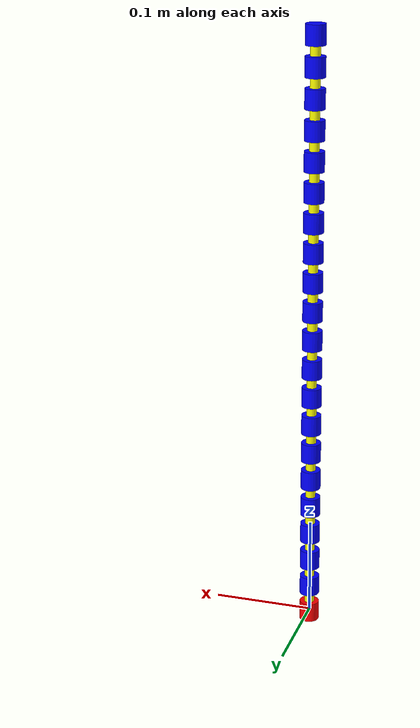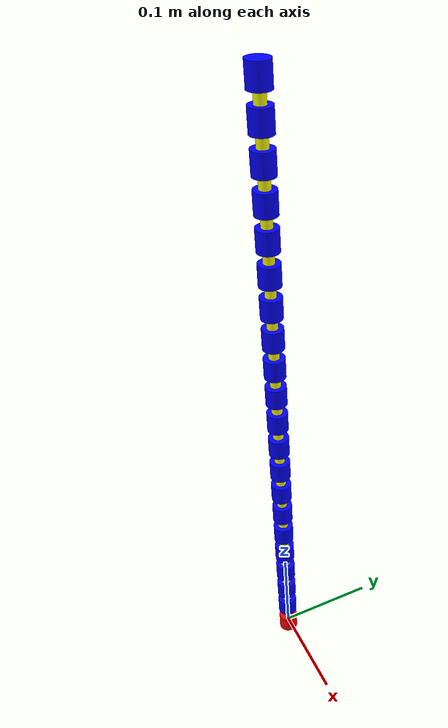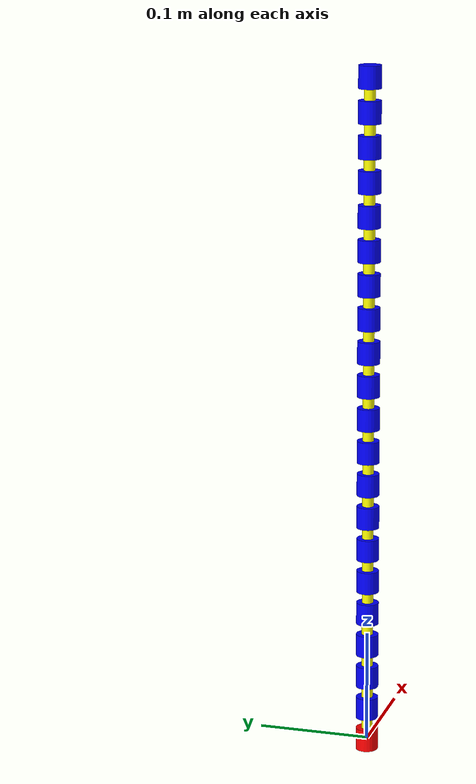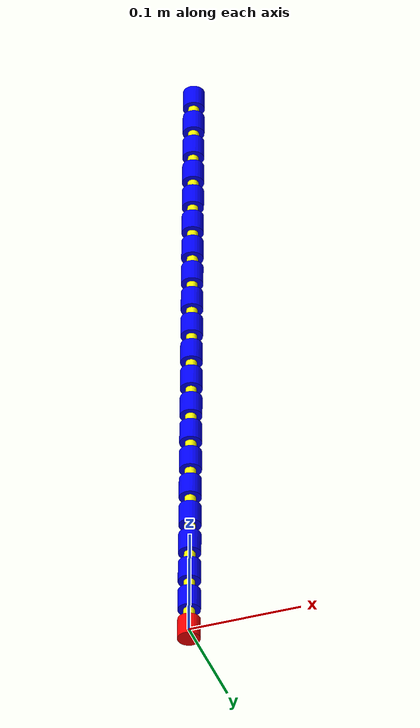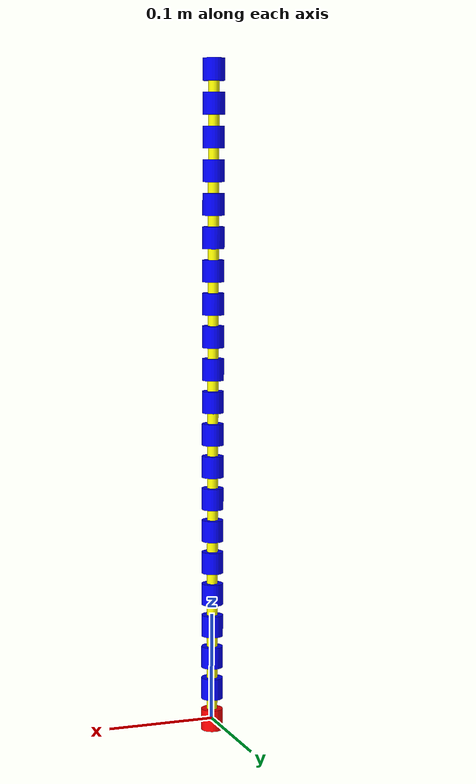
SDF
<sdf version="1.6">
  <model name='chain_neck'>

  <dynamics damping="0.0" />
  <contact>
    <restitution value="0.01"/>
    <lateral_friction value="0.5"/>
    <rolling_friction value="0.5"/>
    <contact_cfm value="0.0"/>
    <contact_erp value="1.0"/>
  </contact>

  <link name='body_link_0'>
    <self_collide>1</self_collide>
    <pose>0 0 0 0 -0 0</pose>
    <inertial>
      <pose>0 0 0 0 -0 0</pose>
      <mass>0.002</mass>
      <inertia>
        <ixx>1.1666666666666667e-07</ixx>
        <ixy>0</ixy>
        <ixz>0</ixz>
        <iyy>1.1666666666666667e-07</iyy>
        <iyz>0</iyz>
        <izz>1.0000000000000001e-07</izz>
      </inertia>
    </inertial>
    <collision name='base_link_collision_0'>
      <pose>0 0 0 0 -0 0</pose>
      <geometry>
        <cylinder>
          <length>0.02 0.02 0.02</length>
          <radius>0.01 0.01 0.01</radius>
        </cylinder>
      </geometry>
    </collision>
    <visual name='base_link_visual_0'>
      <pose>0 0 0 0 -0 0</pose>
      <geometry>
        <cylinder>
          <length>0.02 0.02 0.02</length>
          <radius>0.01 0.01 0.01</radius>
        </cylinder>
      </geometry>
      <material name="red">
        <ambient>1 0 0 1</ambient>
        <diffuse>1 0 0 1</diffuse>
        <specular>1 0 0 1</specular>
        <emissive>0 0 0 0</emissive>
      </material>
    </visual>
  </link>

  <link name='aux_body_link_1'>
    <self_collide>1</self_collide>
    <pose>0 0 0.015 0 -0 0</pose>
    <inertial>
      <pose>0 0 0 0 -0 0</pose>
      <mass>0.002</mass>
      <inertia>
        <ixx>2.9166666666666666e-08</ixx>
        <ixy>0</ixy>
        <ixz>0</ixz>
        <iyy>2.9166666666666666e-08</iyy>
        <iyz>0</iyz>
        <izz>2.5000000000000002e-08</izz>
      </inertia>
    </inertial>
    <collision name='aux_body_link_1_collision'>
      <pose>0 0 0 0 -0 0</pose>
      <geometry>
        <cylinder>
          <length>0.01 0.01 0.01</length>
          <radius>0.005 0.005 0.005</radius>
        </cylinder>
      </geometry>
    </collision>
    <visual name='aux_body_link_1_visual'>
      <pose>0 0 0 0 -0 0</pose>
      <geometry>
        <cylinder>
          <length>0.01 0.01 0.01</length>
          <radius>0.005 0.005 0.005</radius>
        </cylinder>
      </geometry>
      <material name="yellow">
        <ambient>1 1 0 1</ambient>
        <diffuse>1 1 0 1</diffuse>
        <specular>1 1 0 1</specular>
        <emissive>0 0 0 0</emissive>
      </material>
    </visual>
  </link>

  <joint name='aux_body_link_1_joint' type='revolute'>
    <pose>0 0 -0.005 0 0 0</pose>
    <child>aux_body_link_1</child>
    <parent>body_link_0</parent>
    <axis>
      <xyz>1 0 0</xyz>
      <limit>
        <lower>-3.14159</lower>
        <upper>3.14159</upper>
        <effort>20</effort>
        <velocity>2</velocity>
      </limit>
    </axis>
  </joint>

  <link name='body_link_1'>
    <self_collide>1</self_collide>
    <pose>0 0 0.03 0 -0 0</pose>
    <inertial>
      <pose>0 0 0 0 -0 0</pose>
      <mass>0.002</mass>
      <inertia>
        <ixx>1.1666666666666667e-07</ixx>
        <ixy>0</ixy>
        <ixz>0</ixz>
        <iyy>1.1666666666666667e-07</iyy>
        <iyz>0</iyz>
        <izz>1.0000000000000001e-07</izz>
      </inertia>
    </inertial>
    <collision name='body_link_1_collision'>
      <pose>0 0 0 0 -0 0</pose>
      <geometry>
        <cylinder>
          <length>0.02 0.02 0.02</length>
          <radius>0.01 0.01 0.01</radius>
        </cylinder>
      </geometry>
    </collision>
    <visual name='body_link_1_visual'>
      <pose>0 0 0 0 -0 0</pose>
      <geometry>
        <cylinder>
          <length>0.02 0.02 0.02</length>
          <radius>0.01 0.01 0.01</radius>
        </cylinder>
      </geometry>
      <material name="blue">
        <ambient>0 0 1 1</ambient>
        <diffuse>0 0 1 1</diffuse>
        <specular>0 0 1 1</specular>
        <emissive>0 0 0 0</emissive>
      </material>
    </visual>
  </link>

  <joint name='body_link_1_joint' type='revolute'>
    <pose>0 0 -0.01 0 0 0</pose>
    <child>body_link_1</child>
    <parent>aux_body_link_1</parent>
    <axis>
      <xyz>0 1 0</xyz>
      <limit>
        <lower>-3.14159</lower>
        <upper>3.14159</upper>
        <effort>20</effort>
        <velocity>2</velocity>
      </limit>
    </axis>
  </joint>

  <link name='aux_body_link_2'>
    <self_collide>1</self_collide>
    <pose>0 0 0.045 0 -0 0</pose>
    <inertial>
      <pose>0 0 0 0 -0 0</pose>
      <mass>0.002</mass>
      <inertia>
        <ixx>2.9166666666666666e-08</ixx>
        <ixy>0</ixy>
        <ixz>0</ixz>
        <iyy>2.9166666666666666e-08</iyy>
        <iyz>0</iyz>
        <izz>2.5000000000000002e-08</izz>
      </inertia>
    </inertial>
    <collision name='aux_body_link_2_collision'>
      <pose>0 0 0 0 -0 0</pose>
      <geometry>
        <cylinder>
          <length>0.01 0.01 0.01</length>
          <radius>0.005 0.005 0.005</radius>
        </cylinder>
      </geometry>
    </collision>
    <visual name='aux_body_link_2_visual'>
      <pose>0 0 0 0 -0 0</pose>
      <geometry>
        <cylinder>
          <length>0.01 0.01 0.01</length>
          <radius>0.005 0.005 0.005</radius>
        </cylinder>
      </geometry>
      <material name="yellow">
        <ambient>1 1 0 1</ambient>
        <diffuse>1 1 0 1</diffuse>
        <specular>1 1 0 1</specular>
        <emissive>0 0 0 0</emissive>
      </material>
    </visual>
  </link>

  <joint name='aux_body_link_2_joint' type='revolute'>
    <pose>0 0 -0.005 0 0 0</pose>
    <child>aux_body_link_2</child>
    <parent>body_link_1</parent>
    <axis>
      <xyz>1 0 0</xyz>
      <limit>
        <lower>-3.14159</lower>
        <upper>3.14159</upper>
        <effort>20</effort>
        <velocity>2</velocity>
      </limit>
    </axis>
  </joint>

  <link name='body_link_2'>
    <self_collide>1</self_collide>
    <pose>0 0 0.06 0 -0 0</pose>
    <inertial>
      <pose>0 0 0 0 -0 0</pose>
      <mass>0.002</mass>
      <inertia>
        <ixx>1.1666666666666667e-07</ixx>
        <ixy>0</ixy>
        <ixz>0</ixz>
        <iyy>1.1666666666666667e-07</iyy>
        <iyz>0</iyz>
        <izz>1.0000000000000001e-07</izz>
      </inertia>
    </inertial>
    <collision name='body_link_2_collision'>
      <pose>0 0 0 0 -0 0</pose>
      <geometry>
        <cylinder>
          <length>0.02 0.02 0.02</length>
          <radius>0.01 0.01 0.01</radius>
        </cylinder>
      </geometry>
    </collision>
    <visual name='body_link_2_visual'>
      <pose>0 0 0 0 -0 0</pose>
      <geometry>
        <cylinder>
          <length>0.02 0.02 0.02</length>
          <radius>0.01 0.01 0.01</radius>
        </cylinder>
      </geometry>
      <material name="blue">
        <ambient>0 0 1 1</ambient>
        <diffuse>0 0 1 1</diffuse>
        <specular>0 0 1 1</specular>
        <emissive>0 0 0 0</emissive>
      </material>
    </visual>
  </link>

  <joint name='body_link_2_joint' type='revolute'>
    <pose>0 0 -0.01 0 0 0</pose>
    <child>body_link_2</child>
    <parent>aux_body_link_2</parent>
    <axis>
      <xyz>0 1 0</xyz>
      <limit>
        <lower>-3.14159</lower>
        <upper>3.14159</upper>
        <effort>20</effort>
        <velocity>2</velocity>
      </limit>
    </axis>
  </joint>

  <link name='aux_body_link_3'>
    <self_collide>1</self_collide>
    <pose>0 0 0.075 0 -0 0</pose>
    <inertial>
      <pose>0 0 0 0 -0 0</pose>
      <mass>0.002</mass>
      <inertia>
        <ixx>2.9166666666666666e-08</ixx>
        <ixy>0</ixy>
        <ixz>0</ixz>
        <iyy>2.9166666666666666e-08</iyy>
        <iyz>0</iyz>
        <izz>2.5000000000000002e-08</izz>
      </inertia>
    </inertial>
    <collision name='aux_body_link_3_collision'>
      <pose>0 0 0 0 -0 0</pose>
      <geometry>
        <cylinder>
          <length>0.01 0.01 0.01</length>
          <radius>0.005 0.005 0.005</radius>
        </cylinder>
      </geometry>
    </collision>
    <visual name='aux_body_link_3_visual'>
      <pose>0 0 0 0 -0 0</pose>
      <geometry>
        <cylinder>
          <length>0.01 0.01 0.01</length>
          <radius>0.005 0.005 0.005</radius>
        </cylinder>
      </geometry>
      <material name="yellow">
        <ambient>1 1 0 1</ambient>
        <diffuse>1 1 0 1</diffuse>
        <specular>1 1 0 1</specular>
        <emissive>0 0 0 0</emissive>
      </material>
    </visual>
  </link>

  <joint name='aux_body_link_3_joint' type='revolute'>
    <pose>0 0 -0.005 0 0 0</pose>
    <child>aux_body_link_3</child>
    <parent>body_link_2</parent>
    <axis>
      <xyz>1 0 0</xyz>
      <limit>
        <lower>-3.14159</lower>
        <upper>3.14159</upper>
        <effort>20</effort>
        <velocity>2</velocity>
      </limit>
    </axis>
  </joint>

  <link name='body_link_3'>
    <self_collide>1</self_collide>
    <pose>0 0 0.09 0 -0 0</pose>
    <inertial>
      <pose>0 0 0 0 -0 0</pose>
      <mass>0.002</mass>
      <inertia>
        <ixx>1.1666666666666667e-07</ixx>
        <ixy>0</ixy>
        <ixz>0</ixz>
        <iyy>1.1666666666666667e-07</iyy>
        <iyz>0</iyz>
        <izz>1.0000000000000001e-07</izz>
      </inertia>
    </inertial>
    <collision name='body_link_3_collision'>
      <pose>0 0 0 0 -0 0</pose>
      <geometry>
        <cylinder>
          <length>0.02 0.02 0.02</length>
          <radius>0.01 0.01 0.01</radius>
        </cylinder>
      </geometry>
    </collision>
    <visual name='body_link_3_visual'>
      <pose>0 0 0 0 -0 0</pose>
      <geometry>
        <cylinder>
          <length>0.02 0.02 0.02</length>
          <radius>0.01 0.01 0.01</radius>
        </cylinder>
      </geometry>
      <material name="blue">
        <ambient>0 0 1 1</ambient>
        <diffuse>0 0 1 1</diffuse>
        <specular>0 0 1 1</specular>
        <emissive>0 0 0 0</emissive>
      </material>
    </visual>
  </link>

  <joint name='body_link_3_joint' type='revolute'>
    <pose>0 0 -0.01 0 0 0</pose>
    <child>body_link_3</child>
    <parent>aux_body_link_3</parent>
    <axis>
      <xyz>0 1 0</xyz>
      <limit>
        <lower>-3.14159</lower>
        <upper>3.14159</upper>
        <effort>20</effort>
        <velocity>2</velocity>
      </limit>
    </axis>
  </joint>

  <link name='aux_body_link_4'>
    <self_collide>1</self_collide>
    <pose>0 0 0.105 0 -0 0</pose>
    <inertial>
      <pose>0 0 0 0 -0 0</pose>
      <mass>0.002</mass>
      <inertia>
        <ixx>2.9166666666666666e-08</ixx>
        <ixy>0</ixy>
        <ixz>0</ixz>
        <iyy>2.9166666666666666e-08</iyy>
        <iyz>0</iyz>
        <izz>2.5000000000000002e-08</izz>
      </inertia>
    </inertial>
    <collision name='aux_body_link_4_collision'>
      <pose>0 0 0 0 -0 0</pose>
      <geometry>
        <cylinder>
          <length>0.01 0.01 0.01</length>
          <radius>0.005 0.005 0.005</radius>
        </cylinder>
      </geometry>
    </collision>
    <visual name='aux_body_link_4_visual'>
      <pose>0 0 0 0 -0 0</pose>
      <geometry>
        <cylinder>
          <length>0.01 0.01 0.01</length>
          <radius>0.005 0.005 0.005</radius>
        </cylinder>
      </geometry>
      <material name="yellow">
        <ambient>1 1 0 1</ambient>
        <diffuse>1 1 0 1</diffuse>
        <specular>1 1 0 1</specular>
        <emissive>0 0 0 0</emissive>
      </material>
    </visual>
  </link>

  <joint name='aux_body_link_4_joint' type='revolute'>
    <pose>0 0 -0.005 0 0 0</pose>
    <child>aux_body_link_4</child>
    <parent>body_link_3</parent>
    <axis>
      <xyz>1 0 0</xyz>
      <limit>
        <lower>-3.14159</lower>
        <upper>3.14159</upper>
        <effort>20</effort>
        <velocity>2</velocity>
      </limit>
    </axis>
  </joint>

  <link name='body_link_4'>
    <self_collide>1</self_collide>
    <pose>0 0 0.12 0 -0 0</pose>
    <inertial>
      <pose>0 0 0 0 -0 0</pose>
      <mass>0.002</mass>
      <inertia>
        <ixx>1.1666666666666667e-07</ixx>
        <ixy>0</ixy>
        <ixz>0</ixz>
        <iyy>1.1666666666666667e-07</iyy>
        <iyz>0</iyz>
        <izz>1.0000000000000001e-07</izz>
      </inertia>
    </inertial>
    <collision name='body_link_4_collision'>
      <pose>0 0 0 0 -0 0</pose>
      <geometry>
        <cylinder>
          <length>0.02 0.02 0.02</length>
          <radius>0.01 0.01 0.01</radius>
        </cylinder>
      </geometry>
    </collision>
    <visual name='body_link_4_visual'>
      <pose>0 0 0 0 -0 0</pose>
      <geometry>
        <cylinder>
          <length>0.02 0.02 0.02</length>
          <radius>0.01 0.01 0.01</radius>
        </cylinder>
      </geometry>
      <material name="blue">
        <ambient>0 0 1 1</ambient>
        <diffuse>0 0 1 1</diffuse>
        <specular>0 0 1 1</specular>
        <emissive>0 0 0 0</emissive>
      </material>
    </visual>
  </link>

  <joint name='body_link_4_joint' type='revolute'>
    <pose>0 0 -0.01 0 0 0</pose>
    <child>body_link_4</child>
    <parent>aux_body_link_4</parent>
    <axis>
      <xyz>0 1 0</xyz>
      <limit>
        <lower>-3.14159</lower>
        <upper>3.14159</upper>
        <effort>20</effort>
        <velocity>2</velocity>
      </limit>
    </axis>
  </joint>

  <link name='aux_body_link_5'>
    <self_collide>1</self_collide>
    <pose>0 0 0.135 0 -0 0</pose>
    <inertial>
      <pose>0 0 0 0 -0 0</pose>
      <mass>0.002</mass>
      <inertia>
        <ixx>2.9166666666666666e-08</ixx>
        <ixy>0</ixy>
        <ixz>0</ixz>
        <iyy>2.9166666666666666e-08</iyy>
        <iyz>0</iyz>
        <izz>2.5000000000000002e-08</izz>
      </inertia>
    </inertial>
    <collision name='aux_body_link_5_collision'>
      <pose>0 0 0 0 -0 0</pose>
      <geometry>
        <cylinder>
          <length>0.01 0.01 0.01</length>
          <radius>0.005 0.005 0.005</radius>
        </cylinder>
      </geometry>
    </collision>
    <visual name='aux_body_link_5_visual'>
      <pose>0 0 0 0 -0 0</pose>
      <geometry>
        <cylinder>
          <length>0.01 0.01 0.01</length>
          <radius>0.005 0.005 0.005</radius>
        </cylinder>
      </geometry>
      <material name="yellow">
        <ambient>1 1 0 1</ambient>
        <diffuse>1 1 0 1</diffuse>
        <specular>1 1 0 1</specular>
        <emissive>0 0 0 0</emissive>
      </material>
    </visual>
  </link>

  <joint name='aux_body_link_5_joint' type='revolute'>
    <pose>0 0 -0.005 0 0 0</pose>
    <child>aux_body_link_5</child>
    <parent>body_link_4</parent>
    <axis>
      <xyz>1 0 0</xyz>
      <limit>
        <lower>-3.14159</lower>
        <upper>3.14159</upper>
        <effort>20</effort>
        <velocity>2</velocity>
      </limit>
    </axis>
  </joint>

  <link name='body_link_5'>
    <self_collide>1</self_collide>
    <pose>0 0 0.15 0 -0 0</pose>
    <inertial>
      <pose>0 0 0 0 -0 0</pose>
      <mass>0.002</mass>
      <inertia>
        <ixx>1.1666666666666667e-07</ixx>
        <ixy>0</ixy>
        <ixz>0</ixz>
        <iyy>1.1666666666666667e-07</iyy>
        <iyz>0</iyz>
        <izz>1.0000000000000001e-07</izz>
      </inertia>
    </inertial>
    <collision name='body_link_5_collision'>
      <pose>0 0 0 0 -0 0</pose>
      <geometry>
        <cylinder>
          <length>0.02 0.02 0.02</length>
          <radius>0.01 0.01 0.01</radius>
        </cylinder>
      </geometry>
    </collision>
    <visual name='body_link_5_visual'>
      <pose>0 0 0 0 -0 0</pose>
      <geometry>
        <cylinder>
          <length>0.02 0.02 0.02</length>
          <radius>0.01 0.01 0.01</radius>
        </cylinder>
      </geometry>
      <material name="blue">
        <ambient>0 0 1 1</ambient>
        <diffuse>0 0 1 1</diffuse>
        <specular>0 0 1 1</specular>
        <emissive>0 0 0 0</emissive>
      </material>
    </visual>
  </link>

  <joint name='body_link_5_joint' type='revolute'>
    <pose>0 0 -0.01 0 0 0</pose>
    <child>body_link_5</child>
    <parent>aux_body_link_5</parent>
    <axis>
      <xyz>0 1 0</xyz>
      <limit>
        <lower>-3.14159</lower>
        <upper>3.14159</upper>
        <effort>20</effort>
        <velocity>2</velocity>
      </limit>
    </axis>
  </joint>

  <link name='aux_body_link_6'>
    <self_collide>1</self_collide>
    <pose>0 0 0.16499999999999998 0 -0 0</pose>
    <inertial>
      <pose>0 0 0 0 -0 0</pose>
      <mass>0.002</mass>
      <inertia>
        <ixx>2.9166666666666666e-08</ixx>
        <ixy>0</ixy>
        <ixz>0</ixz>
        <iyy>2.9166666666666666e-08</iyy>
        <iyz>0</iyz>
        <izz>2.5000000000000002e-08</izz>
      </inertia>
    </inertial>
    <collision name='aux_body_link_6_collision'>
      <pose>0 0 0 0 -0 0</pose>
      <geometry>
        <cylinder>
          <length>0.01 0.01 0.01</length>
          <radius>0.005 0.005 0.005</radius>
        </cylinder>
      </geometry>
    </collision>
    <visual name='aux_body_link_6_visual'>
      <pose>0 0 0 0 -0 0</pose>
      <geometry>
        <cylinder>
          <length>0.01 0.01 0.01</length>
          <radius>0.005 0.005 0.005</radius>
        </cylinder>
      </geometry>
      <material name="yellow">
        <ambient>1 1 0 1</ambient>
        <diffuse>1 1 0 1</diffuse>
        <specular>1 1 0 1</specular>
        <emissive>0 0 0 0</emissive>
      </material>
    </visual>
  </link>

  <joint name='aux_body_link_6_joint' type='revolute'>
    <pose>0 0 -0.005 0 0 0</pose>
    <child>aux_body_link_6</child>
    <parent>body_link_5</parent>
    <axis>
      <xyz>1 0 0</xyz>
      <limit>
        <lower>-3.14159</lower>
        <upper>3.14159</upper>
        <effort>20</effort>
        <velocity>2</velocity>
      </limit>
    </axis>
  </joint>

  <link name='body_link_6'>
    <self_collide>1</self_collide>
    <pose>0 0 0.18 0 -0 0</pose>
    <inertial>
      <pose>0 0 0 0 -0 0</pose>
      <mass>0.002</mass>
      <inertia>
        <ixx>1.1666666666666667e-07</ixx>
        <ixy>0</ixy>
        <ixz>0</ixz>
        <iyy>1.1666666666666667e-07</iyy>
        <iyz>0</iyz>
        <izz>1.0000000000000001e-07</izz>
      </inertia>
    </inertial>
    <collision name='body_link_6_collision'>
      <pose>0 0 0 0 -0 0</pose>
      <geometry>
        <cylinder>
          <length>0.02 0.02 0.02</length>
          <radius>0.01 0.01 0.01</radius>
        </cylinder>
      </geometry>
    </collision>
    <visual name='body_link_6_visual'>
      <pose>0 0 0 0 -0 0</pose>
      <geometry>
        <cylinder>
          <length>0.02 0.02 0.02</length>
          <radius>0.01 0.01 0.01</radius>
        </cylinder>
      </geometry>
      <material name="blue">
        <ambient>0 0 1 1</ambient>
        <diffuse>0 0 1 1</diffuse>
        <specular>0 0 1 1</specular>
        <emissive>0 0 0 0</emissive>
      </material>
    </visual>
  </link>

  <joint name='body_link_6_joint' type='revolute'>
    <pose>0 0 -0.01 0 0 0</pose>
    <child>body_link_6</child>
    <parent>aux_body_link_6</parent>
    <axis>
      <xyz>0 1 0</xyz>
      <limit>
        <lower>-3.14159</lower>
        <upper>3.14159</upper>
        <effort>20</effort>
        <velocity>2</velocity>
      </limit>
    </axis>
  </joint>

  <link name='aux_body_link_7'>
    <self_collide>1</self_collide>
    <pose>0 0 0.195 0 -0 0</pose>
    <inertial>
      <pose>0 0 0 0 -0 0</pose>
      <mass>0.002</mass>
      <inertia>
        <ixx>2.9166666666666666e-08</ixx>
        <ixy>0</ixy>
        <ixz>0</ixz>
        <iyy>2.9166666666666666e-08</iyy>
        <iyz>0</iyz>
        <izz>2.5000000000000002e-08</izz>
      </inertia>
    </inertial>
    <collision name='aux_body_link_7_collision'>
      <pose>0 0 0 0 -0 0</pose>
      <geometry>
        <cylinder>
          <length>0.01 0.01 0.01</length>
          <radius>0.005 0.005 0.005</radius>
        </cylinder>
      </geometry>
    </collision>
    <visual name='aux_body_link_7_visual'>
      <pose>0 0 0 0 -0 0</pose>
      <geometry>
        <cylinder>
          <length>0.01 0.01 0.01</length>
          <radius>0.005 0.005 0.005</radius>
        </cylinder>
      </geometry>
      <material name="yellow">
        <ambient>1 1 0 1</ambient>
        <diffuse>1 1 0 1</diffuse>
        <specular>1 1 0 1</specular>
        <emissive>0 0 0 0</emissive>
      </material>
    </visual>
  </link>

  <joint name='aux_body_link_7_joint' type='revolute'>
    <pose>0 0 -0.005 0 0 0</pose>
    <child>aux_body_link_7</child>
    <parent>body_link_6</parent>
    <axis>
      <xyz>1 0 0</xyz>
      <limit>
        <lower>-3.14159</lower>
        <upper>3.14159</upper>
        <effort>20</effort>
        <velocity>2</velocity>
      </limit>
    </axis>
  </joint>

  <link name='body_link_7'>
    <self_collide>1</self_collide>
    <pose>0 0 0.21 0 -0 0</pose>
    <inertial>
      <pose>0 0 0 0 -0 0</pose>
      <mass>0.002</mass>
      <inertia>
        <ixx>1.1666666666666667e-07</ixx>
        <ixy>0</ixy>
        <ixz>0</ixz>
        <iyy>1.1666666666666667e-07</iyy>
        <iyz>0</iyz>
        <izz>1.0000000000000001e-07</izz>
      </inertia>
    </inertial>
    <collision name='body_link_7_collision'>
      <pose>0 0 0 0 -0 0</pose>
      <geometry>
        <cylinder>
          <length>0.02 0.02 0.02</length>
          <radius>0.01 0.01 0.01</radius>
        </cylinder>
      </geometry>
    </collision>
    <visual name='body_link_7_visual'>
      <pose>0 0 0 0 -0 0</pose>
      <geometry>
        <cylinder>
          <length>0.02 0.02 0.02</length>
          <radius>0.01 0.01 0.01</radius>
        </cylinder>
      </geometry>
      <material name="blue">
        <ambient>0 0 1 1</ambient>
        <diffuse>0 0 1 1</diffuse>
        <specular>0 0 1 1</specular>
        <emissive>0 0 0 0</emissive>
      </material>
    </visual>
  </link>

  <joint name='body_link_7_joint' type='revolute'>
    <pose>0 0 -0.01 0 0 0</pose>
    <child>body_link_7</child>
    <parent>aux_body_link_7</parent>
    <axis>
      <xyz>0 1 0</xyz>
      <limit>
        <lower>-3.14159</lower>
        <upper>3.14159</upper>
        <effort>20</effort>
        <velocity>2</velocity>
      </limit>
    </axis>
  </joint>

  <link name='aux_body_link_8'>
    <self_collide>1</self_collide>
    <pose>0 0 0.22499999999999998 0 -0 0</pose>
    <inertial>
      <pose>0 0 0 0 -0 0</pose>
      <mass>0.002</mass>
      <inertia>
        <ixx>2.9166666666666666e-08</ixx>
        <ixy>0</ixy>
        <ixz>0</ixz>
        <iyy>2.9166666666666666e-08</iyy>
        <iyz>0</iyz>
        <izz>2.5000000000000002e-08</izz>
      </inertia>
    </inertial>
    <collision name='aux_body_link_8_collision'>
      <pose>0 0 0 0 -0 0</pose>
      <geometry>
        <cylinder>
          <length>0.01 0.01 0.01</length>
          <radius>0.005 0.005 0.005</radius>
        </cylinder>
      </geometry>
    </collision>
    <visual name='aux_body_link_8_visual'>
      <pose>0 0 0 0 -0 0</pose>
      <geometry>
        <cylinder>
          <length>0.01 0.01 0.01</length>
          <radius>0.005 0.005 0.005</radius>
        </cylinder>
      </geometry>
      <material name="yellow">
        <ambient>1 1 0 1</ambient>
        <diffuse>1 1 0 1</diffuse>
        <specular>1 1 0 1</specular>
        <emissive>0 0 0 0</emissive>
      </material>
    </visual>
  </link>

  <joint name='aux_body_link_8_joint' type='revolute'>
    <pose>0 0 -0.005 0 0 0</pose>
    <child>aux_body_link_8</child>
    <parent>body_link_7</parent>
    <axis>
      <xyz>1 0 0</xyz>
      <limit>
        <lower>-3.14159</lower>
        <upper>3.14159</upper>
        <effort>20</effort>
        <velocity>2</velocity>
      </limit>
    </axis>
  </joint>

  <link name='body_link_8'>
    <self_collide>1</self_collide>
    <pose>0 0 0.24 0 -0 0</pose>
    <inertial>
      <pose>0 0 0 0 -0 0</pose>
      <mass>0.002</mass>
      <inertia>
        <ixx>1.1666666666666667e-07</ixx>
        <ixy>0</ixy>
        <ixz>0</ixz>
        <iyy>1.1666666666666667e-07</iyy>
        <iyz>0</iyz>
        <izz>1.0000000000000001e-07</izz>
      </inertia>
    </inertial>
    <collision name='body_link_8_collision'>
      <pose>0 0 0 0 -0 0</pose>
      <geometry>
        <cylinder>
          <length>0.02 0.02 0.02</length>
          <radius>0.01 0.01 0.01</radius>
        </cylinder>
      </geometry>
    </collision>
    <visual name='body_link_8_visual'>
      <pose>0 0 0 0 -0 0</pose>
      <geometry>
        <cylinder>
          <length>0.02 0.02 0.02</length>
          <radius>0.01 0.01 0.01</radius>
        </cylinder>
      </geometry>
      <material name="blue">
        <ambient>0 0 1 1</ambient>
        <diffuse>0 0 1 1</diffuse>
        <specular>0 0 1 1</specular>
        <emissive>0 0 0 0</emissive>
      </material>
    </visual>
  </link>

  <joint name='body_link_8_joint' type='revolute'>
    <pose>0 0 -0.01 0 0 0</pose>
    <child>body_link_8</child>
    <parent>aux_body_link_8</parent>
    <axis>
      <xyz>0 1 0</xyz>
      <limit>
        <lower>-3.14159</lower>
        <upper>3.14159</upper>
        <effort>20</effort>
        <velocity>2</velocity>
      </limit>
    </axis>
  </joint>

  <link name='aux_body_link_9'>
    <self_collide>1</self_collide>
    <pose>0 0 0.255 0 -0 0</pose>
    <inertial>
      <pose>0 0 0 0 -0 0</pose>
      <mass>0.002</mass>
      <inertia>
        <ixx>2.9166666666666666e-08</ixx>
        <ixy>0</ixy>
        <ixz>0</ixz>
        <iyy>2.9166666666666666e-08</iyy>
        <iyz>0</iyz>
        <izz>2.5000000000000002e-08</izz>
      </inertia>
    </inertial>
    <collision name='aux_body_link_9_collision'>
      <pose>0 0 0 0 -0 0</pose>
      <geometry>
        <cylinder>
          <length>0.01 0.01 0.01</length>
          <radius>0.005 0.005 0.005</radius>
        </cylinder>
      </geometry>
    </collision>
    <visual name='aux_body_link_9_visual'>
      <pose>0 0 0 0 -0 0</pose>
      <geometry>
        <cylinder>
          <length>0.01 0.01 0.01</length>
          <radius>0.005 0.005 0.005</radius>
        </cylinder>
      </geometry>
      <material name="yellow">
        <ambient>1 1 0 1</ambient>
        <diffuse>1 1 0 1</diffuse>
        <specular>1 1 0 1</specular>
        <emissive>0 0 0 0</emissive>
      </material>
    </visual>
  </link>

  <joint name='aux_body_link_9_joint' type='revolute'>
    <pose>0 0 -0.005 0 0 0</pose>
    <child>aux_body_link_9</child>
    <parent>body_link_8</parent>
    <axis>
      <xyz>1 0 0</xyz>
      <limit>
        <lower>-3.14159</lower>
        <upper>3.14159</upper>
        <effort>20</effort>
        <velocity>2</velocity>
      </limit>
    </axis>
  </joint>

  <link name='body_link_9'>
    <self_collide>1</self_collide>
    <pose>0 0 0.27 0 -0 0</pose>
    <inertial>
      <pose>0 0 0 0 -0 0</pose>
      <mass>0.002</mass>
      <inertia>
        <ixx>1.1666666666666667e-07</ixx>
        <ixy>0</ixy>
        <ixz>0</ixz>
        <iyy>1.1666666666666667e-07</iyy>
        <iyz>0</iyz>
        <izz>1.0000000000000001e-07</izz>
      </inertia>
    </inertial>
    <collision name='body_link_9_collision'>
      <pose>0 0 0 0 -0 0</pose>
      <geometry>
        <cylinder>
          <length>0.02 0.02 0.02</length>
          <radius>0.01 0.01 0.01</radius>
        </cylinder>
      </geometry>
    </collision>
    <visual name='body_link_9_visual'>
      <pose>0 0 0 0 -0 0</pose>
      <geometry>
        <cylinder>
          <length>0.02 0.02 0.02</length>
          <radius>0.01 0.01 0.01</radius>
        </cylinder>
      </geometry>
      <material name="blue">
        <ambient>0 0 1 1</ambient>
        <diffuse>0 0 1 1</diffuse>
        <specular>0 0 1 1</specular>
        <emissive>0 0 0 0</emissive>
      </material>
    </visual>
  </link>

  <joint name='body_link_9_joint' type='revolute'>
    <pose>0 0 -0.01 0 0 0</pose>
    <child>body_link_9</child>
    <parent>aux_body_link_9</parent>
    <axis>
      <xyz>0 1 0</xyz>
      <limit>
        <lower>-3.14159</lower>
        <upper>3.14159</upper>
        <effort>20</effort>
        <velocity>2</velocity>
      </limit>
    </axis>
  </joint>

  <link name='aux_body_link_10'>
    <self_collide>1</self_collide>
    <pose>0 0 0.285 0 -0 0</pose>
    <inertial>
      <pose>0 0 0 0 -0 0</pose>
      <mass>0.002</mass>
      <inertia>
        <ixx>2.9166666666666666e-08</ixx>
        <ixy>0</ixy>
        <ixz>0</ixz>
        <iyy>2.9166666666666666e-08</iyy>
        <iyz>0</iyz>
        <izz>2.5000000000000002e-08</izz>
      </inertia>
    </inertial>
    <collision name='aux_body_link_10_collision'>
      <pose>0 0 0 0 -0 0</pose>
      <geometry>
        <cylinder>
          <length>0.01 0.01 0.01</length>
          <radius>0.005 0.005 0.005</radius>
        </cylinder>
      </geometry>
    </collision>
    <visual name='aux_body_link_10_visual'>
      <pose>0 0 0 0 -0 0</pose>
      <geometry>
        <cylinder>
          <length>0.01 0.01 0.01</length>
          <radius>0.005 0.005 0.005</radius>
        </cylinder>
      </geometry>
      <material name="yellow">
        <ambient>1 1 0 1</ambient>
        <diffuse>1 1 0 1</diffuse>
        <specular>1 1 0 1</specular>
        <emissive>0 0 0 0</emissive>
      </material>
    </visual>
  </link>

  <joint name='aux_body_link_10_joint' type='revolute'>
    <pose>0 0 -0.005 0 0 0</pose>
    <child>aux_body_link_10</child>
    <parent>body_link_9</parent>
    <axis>
      <xyz>1 0 0</xyz>
      <limit>
        <lower>-3.14159</lower>
        <upper>3.14159</upper>
        <effort>20</effort>
        <velocity>2</velocity>
      </limit>
    </axis>
  </joint>

  <link name='body_link_10'>
    <self_collide>1</self_collide>
    <pose>0 0 0.3 0 -0 0</pose>
    <inertial>
      <pose>0 0 0 0 -0 0</pose>
      <mass>0.002</mass>
      <inertia>
        <ixx>1.1666666666666667e-07</ixx>
        <ixy>0</ixy>
        <ixz>0</ixz>
        <iyy>1.1666666666666667e-07</iyy>
        <iyz>0</iyz>
        <izz>1.0000000000000001e-07</izz>
      </inertia>
    </inertial>
    <collision name='body_link_10_collision'>
      <pose>0 0 0 0 -0 0</pose>
      <geometry>
        <cylinder>
          <length>0.02 0.02 0.02</length>
          <radius>0.01 0.01 0.01</radius>
        </cylinder>
      </geometry>
    </collision>
    <visual name='body_link_10_visual'>
      <pose>0 0 0 0 -0 0</pose>
      <geometry>
        <cylinder>
          <length>0.02 0.02 0.02</length>
          <radius>0.01 0.01 0.01</radius>
        </cylinder>
      </geometry>
      <material name="blue">
        <ambient>0 0 1 1</ambient>
        <diffuse>0 0 1 1</diffuse>
        <specular>0 0 1 1</specular>
        <emissive>0 0 0 0</emissive>
      </material>
    </visual>
  </link>

  <joint name='body_link_10_joint' type='revolute'>
    <pose>0 0 -0.01 0 0 0</pose>
    <child>body_link_10</child>
    <parent>aux_body_link_10</parent>
    <axis>
      <xyz>0 1 0</xyz>
      <limit>
        <lower>-3.14159</lower>
        <upper>3.14159</upper>
        <effort>20</effort>
        <velocity>2</velocity>
      </limit>
    </axis>
  </joint>

  <link name='aux_body_link_11'>
    <self_collide>1</self_collide>
    <pose>0 0 0.315 0 -0 0</pose>
    <inertial>
      <pose>0 0 0 0 -0 0</pose>
      <mass>0.002</mass>
      <inertia>
        <ixx>2.9166666666666666e-08</ixx>
        <ixy>0</ixy>
        <ixz>0</ixz>
        <iyy>2.9166666666666666e-08</iyy>
        <iyz>0</iyz>
        <izz>2.5000000000000002e-08</izz>
      </inertia>
    </inertial>
    <collision name='aux_body_link_11_collision'>
      <pose>0 0 0 0 -0 0</pose>
      <geometry>
        <cylinder>
          <length>0.01 0.01 0.01</length>
          <radius>0.005 0.005 0.005</radius>
        </cylinder>
      </geometry>
    </collision>
    <visual name='aux_body_link_11_visual'>
      <pose>0 0 0 0 -0 0</pose>
      <geometry>
        <cylinder>
          <length>0.01 0.01 0.01</length>
          <radius>0.005 0.005 0.005</radius>
        </cylinder>
      </geometry>
      <material name="yellow">
        <ambient>1 1 0 1</ambient>
        <diffuse>1 1 0 1</diffuse>
        <specular>1 1 0 1</specular>
        <emissive>0 0 0 0</emissive>
      </material>
    </visual>
  </link>

  <joint name='aux_body_link_11_joint' type='revolute'>
    <pose>0 0 -0.005 0 0 0</pose>
    <child>aux_body_link_11</child>
    <parent>body_link_10</parent>
    <axis>
      <xyz>1 0 0</xyz>
      <limit>
        <lower>-3.14159</lower>
        <upper>3.14159</upper>
        <effort>20</effort>
        <velocity>2</velocity>
      </limit>
    </axis>
  </joint>

  <link name='body_link_11'>
    <self_collide>1</self_collide>
    <pose>0 0 0.32999999999999996 0 -0 0</pose>
    <inertial>
      <pose>0 0 0 0 -0 0</pose>
      <mass>0.002</mass>
      <inertia>
        <ixx>1.1666666666666667e-07</ixx>
        <ixy>0</ixy>
        <ixz>0</ixz>
        <iyy>1.1666666666666667e-07</iyy>
        <iyz>0</iyz>
        <izz>1.0000000000000001e-07</izz>
      </inertia>
    </inertial>
    <collision name='body_link_11_collision'>
      <pose>0 0 0 0 -0 0</pose>
      <geometry>
        <cylinder>
          <length>0.02 0.02 0.02</length>
          <radius>0.01 0.01 0.01</radius>
        </cylinder>
      </geometry>
    </collision>
    <visual name='body_link_11_visual'>
      <pose>0 0 0 0 -0 0</pose>
      <geometry>
        <cylinder>
          <length>0.02 0.02 0.02</length>
          <radius>0.01 0.01 0.01</radius>
        </cylinder>
      </geometry>
      <material name="blue">
        <ambient>0 0 1 1</ambient>
        <diffuse>0 0 1 1</diffuse>
        <specular>0 0 1 1</specular>
        <emissive>0 0 0 0</emissive>
      </material>
    </visual>
  </link>

  <joint name='body_link_11_joint' type='revolute'>
    <pose>0 0 -0.01 0 0 0</pose>
    <child>body_link_11</child>
    <parent>aux_body_link_11</parent>
    <axis>
      <xyz>0 1 0</xyz>
      <limit>
        <lower>-3.14159</lower>
        <upper>3.14159</upper>
        <effort>20</effort>
        <velocity>2</velocity>
      </limit>
    </axis>
  </joint>

  <link name='aux_body_link_12'>
    <self_collide>1</self_collide>
    <pose>0 0 0.345 0 -0 0</pose>
    <inertial>
      <pose>0 0 0 0 -0 0</pose>
      <mass>0.002</mass>
      <inertia>
        <ixx>2.9166666666666666e-08</ixx>
        <ixy>0</ixy>
        <ixz>0</ixz>
        <iyy>2.9166666666666666e-08</iyy>
        <iyz>0</iyz>
        <izz>2.5000000000000002e-08</izz>
      </inertia>
    </inertial>
    <collision name='aux_body_link_12_collision'>
      <pose>0 0 0 0 -0 0</pose>
      <geometry>
        <cylinder>
          <length>0.01 0.01 0.01</length>
          <radius>0.005 0.005 0.005</radius>
        </cylinder>
      </geometry>
    </collision>
    <visual name='aux_body_link_12_visual'>
      <pose>0 0 0 0 -0 0</pose>
      <geometry>
        <cylinder>
          <length>0.01 0.01 0.01</length>
          <radius>0.005 0.005 0.005</radius>
        </cylinder>
      </geometry>
      <material name="yellow">
        <ambient>1 1 0 1</ambient>
        <diffuse>1 1 0 1</diffuse>
        <specular>1 1 0 1</specular>
        <emissive>0 0 0 0</emissive>
      </material>
    </visual>
  </link>

  <joint name='aux_body_link_12_joint' type='revolute'>
    <pose>0 0 -0.005 0 0 0</pose>
    <child>aux_body_link_12</child>
    <parent>body_link_11</parent>
    <axis>
      <xyz>1 0 0</xyz>
      <limit>
        <lower>-3.14159</lower>
        <upper>3.14159</upper>
        <effort>20</effort>
        <velocity>2</velocity>
      </limit>
    </axis>
  </joint>

  <link name='body_link_12'>
    <self_collide>1</self_collide>
    <pose>0 0 0.36 0 -0 0</pose>
    <inertial>
      <pose>0 0 0 0 -0 0</pose>
      <mass>0.002</mass>
      <inertia>
        <ixx>1.1666666666666667e-07</ixx>
        <ixy>0</ixy>
        <ixz>0</ixz>
        <iyy>1.1666666666666667e-07</iyy>
        <iyz>0</iyz>
        <izz>1.0000000000000001e-07</izz>
      </inertia>
    </inertial>
    <collision name='body_link_12_collision'>
      <pose>0 0 0 0 -0 0</pose>
      <geometry>
        <cylinder>
          <length>0.02 0.02 0.02</length>
          <radius>0.01 0.01 0.01</radius>
        </cylinder>
      </geometry>
    </collision>
    <visual name='body_link_12_visual'>
      <pose>0 0 0 0 -0 0</pose>
      <geometry>
        <cylinder>
          <length>0.02 0.02 0.02</length>
          <radius>0.01 0.01 0.01</radius>
        </cylinder>
      </geometry>
      <material name="blue">
        <ambient>0 0 1 1</ambient>
        <diffuse>0 0 1 1</diffuse>
        <specular>0 0 1 1</specular>
        <emissive>0 0 0 0</emissive>
      </material>
    </visual>
  </link>

  <joint name='body_link_12_joint' type='revolute'>
    <pose>0 0 -0.01 0 0 0</pose>
    <child>body_link_12</child>
    <parent>aux_body_link_12</parent>
    <axis>
      <xyz>0 1 0</xyz>
      <limit>
        <lower>-3.14159</lower>
        <upper>3.14159</upper>
        <effort>20</effort>
        <velocity>2</velocity>
      </limit>
    </axis>
  </joint>

  <link name='aux_body_link_13'>
    <self_collide>1</self_collide>
    <pose>0 0 0.375 0 -0 0</pose>
    <inertial>
      <pose>0 0 0 0 -0 0</pose>
      <mass>0.002</mass>
      <inertia>
        <ixx>2.9166666666666666e-08</ixx>
        <ixy>0</ixy>
        <ixz>0</ixz>
        <iyy>2.9166666666666666e-08</iyy>
        <iyz>0</iyz>
        <izz>2.5000000000000002e-08</izz>
      </inertia>
    </inertial>
    <collision name='aux_body_link_13_collision'>
      <pose>0 0 0 0 -0 0</pose>
      <geometry>
        <cylinder>
          <length>0.01 0.01 0.01</length>
          <radius>0.005 0.005 0.005</radius>
        </cylinder>
      </geometry>
    </collision>
    <visual name='aux_body_link_13_visual'>
      <pose>0 0 0 0 -0 0</pose>
      <geometry>
        <cylinder>
          <length>0.01 0.01 0.01</length>
          <radius>0.005 0.005 0.005</radius>
        </cylinder>
      </geometry>
      <material name="yellow">
        <ambient>1 1 0 1</ambient>
        <diffuse>1 1 0 1</diffuse>
        <specular>1 1 0 1</specular>
        <emissive>0 0 0 0</emissive>
      </material>
    </visual>
  </link>

  <joint name='aux_body_link_13_joint' type='revolute'>
    <pose>0 0 -0.005 0 0 0</pose>
    <child>aux_body_link_13</child>
    <parent>body_link_12</parent>
    <axis>
      <xyz>1 0 0</xyz>
      <limit>
        <lower>-3.14159</lower>
        <upper>3.14159</upper>
        <effort>20</effort>
        <velocity>2</velocity>
      </limit>
    </axis>
  </joint>

  <link name='body_link_13'>
    <self_collide>1</self_collide>
    <pose>0 0 0.39 0 -0 0</pose>
    <inertial>
      <pose>0 0 0 0 -0 0</pose>
      <mass>0.002</mass>
      <inertia>
        <ixx>1.1666666666666667e-07</ixx>
        <ixy>0</ixy>
        <ixz>0</ixz>
        <iyy>1.1666666666666667e-07</iyy>
        <iyz>0</iyz>
        <izz>1.0000000000000001e-07</izz>
      </inertia>
    </inertial>
    <collision name='body_link_13_collision'>
      <pose>0 0 0 0 -0 0</pose>
      <geometry>
        <cylinder>
          <length>0.02 0.02 0.02</length>
          <radius>0.01 0.01 0.01</radius>
        </cylinder>
      </geometry>
    </collision>
    <visual name='body_link_13_visual'>
      <pose>0 0 0 0 -0 0</pose>
      <geometry>
        <cylinder>
          <length>0.02 0.02 0.02</length>
          <radius>0.01 0.01 0.01</radius>
        </cylinder>
      </geometry>
      <material name="blue">
        <ambient>0 0 1 1</ambient>
        <diffuse>0 0 1 1</diffuse>
        <specular>0 0 1 1</specular>
        <emissive>0 0 0 0</emissive>
      </material>
    </visual>
  </link>

  <joint name='body_link_13_joint' type='revolute'>
    <pose>0 0 -0.01 0 0 0</pose>
    <child>body_link_13</child>
    <parent>aux_body_link_13</parent>
    <axis>
      <xyz>0 1 0</xyz>
      <limit>
        <lower>-3.14159</lower>
        <upper>3.14159</upper>
        <effort>20</effort>
        <velocity>2</velocity>
      </limit>
    </axis>
  </joint>

  <link name='aux_body_link_14'>
    <self_collide>1</self_collide>
    <pose>0 0 0.40499999999999997 0 -0 0</pose>
    <inertial>
      <pose>0 0 0 0 -0 0</pose>
      <mass>0.002</mass>
      <inertia>
        <ixx>2.9166666666666666e-08</ixx>
        <ixy>0</ixy>
        <ixz>0</ixz>
        <iyy>2.9166666666666666e-08</iyy>
        <iyz>0</iyz>
        <izz>2.5000000000000002e-08</izz>
      </inertia>
    </inertial>
    <collision name='aux_body_link_14_collision'>
      <pose>0 0 0 0 -0 0</pose>
      <geometry>
        <cylinder>
          <length>0.01 0.01 0.01</length>
          <radius>0.005 0.005 0.005</radius>
        </cylinder>
      </geometry>
    </collision>
    <visual name='aux_body_link_14_visual'>
      <pose>0 0 0 0 -0 0</pose>
      <geometry>
        <cylinder>
          <length>0.01 0.01 0.01</length>
          <radius>0.005 0.005 0.005</radius>
        </cylinder>
      </geometry>
      <material name="yellow">
        <ambient>1 1 0 1</ambient>
        <diffuse>1 1 0 1</diffuse>
        <specular>1 1 0 1</specular>
        <emissive>0 0 0 0</emissive>
      </material>
    </visual>
  </link>

  <joint name='aux_body_link_14_joint' type='revolute'>
    <pose>0 0 -0.005 0 0 0</pose>
    <child>aux_body_link_14</child>
    <parent>body_link_13</parent>
    <axis>
      <xyz>1 0 0</xyz>
      <limit>
        <lower>-3.14159</lower>
        <upper>3.14159</upper>
        <effort>20</effort>
        <velocity>2</velocity>
      </limit>
    </axis>
  </joint>

  <link name='body_link_14'>
    <self_collide>1</self_collide>
    <pose>0 0 0.42 0 -0 0</pose>
    <inertial>
      <pose>0 0 0 0 -0 0</pose>
      <mass>0.002</mass>
      <inertia>
        <ixx>1.1666666666666667e-07</ixx>
        <ixy>0</ixy>
        <ixz>0</ixz>
        <iyy>1.1666666666666667e-07</iyy>
        <iyz>0</iyz>
        <izz>1.0000000000000001e-07</izz>
      </inertia>
    </inertial>
    <collision name='body_link_14_collision'>
      <pose>0 0 0 0 -0 0</pose>
      <geometry>
        <cylinder>
          <length>0.02 0.02 0.02</length>
          <radius>0.01 0.01 0.01</radius>
        </cylinder>
      </geometry>
    </collision>
    <visual name='body_link_14_visual'>
      <pose>0 0 0 0 -0 0</pose>
      <geometry>
        <cylinder>
          <length>0.02 0.02 0.02</length>
          <radius>0.01 0.01 0.01</radius>
        </cylinder>
      </geometry>
      <material name="blue">
        <ambient>0 0 1 1</ambient>
        <diffuse>0 0 1 1</diffuse>
        <specular>0 0 1 1</specular>
        <emissive>0 0 0 0</emissive>
      </material>
    </visual>
  </link>

  <joint name='body_link_14_joint' type='revolute'>
    <pose>0 0 -0.01 0 0 0</pose>
    <child>body_link_14</child>
    <parent>aux_body_link_14</parent>
    <axis>
      <xyz>0 1 0</xyz>
      <limit>
        <lower>-3.14159</lower>
        <upper>3.14159</upper>
        <effort>20</effort>
        <velocity>2</velocity>
      </limit>
    </axis>
  </joint>

  <link name='aux_body_link_15'>
    <self_collide>1</self_collide>
    <pose>0 0 0.435 0 -0 0</pose>
    <inertial>
      <pose>0 0 0 0 -0 0</pose>
      <mass>0.002</mass>
      <inertia>
        <ixx>2.9166666666666666e-08</ixx>
        <ixy>0</ixy>
        <ixz>0</ixz>
        <iyy>2.9166666666666666e-08</iyy>
        <iyz>0</iyz>
        <izz>2.5000000000000002e-08</izz>
      </inertia>
    </inertial>
    <collision name='aux_body_link_15_collision'>
      <pose>0 0 0 0 -0 0</pose>
      <geometry>
        <cylinder>
          <length>0.01 0.01 0.01</length>
          <radius>0.005 0.005 0.005</radius>
        </cylinder>
      </geometry>
    </collision>
    <visual name='aux_body_link_15_visual'>
      <pose>0 0 0 0 -0 0</pose>
      <geometry>
        <cylinder>
          <length>0.01 0.01 0.01</length>
          <radius>0.005 0.005 0.005</radius>
        </cylinder>
      </geometry>
      <material name="yellow">
        <ambient>1 1 0 1</ambient>
        <diffuse>1 1 0 1</diffuse>
        <specular>1 1 0 1</specular>
        <emissive>0 0 0 0</emissive>
      </material>
    </visual>
  </link>

  <joint name='aux_body_link_15_joint' type='revolute'>
    <pose>0 0 -0.005 0 0 0</pose>
    <child>aux_body_link_15</child>
    <parent>body_link_14</parent>
    <axis>
      <xyz>1 0 0</xyz>
      <limit>
        <lower>-3.14159</lower>
        <upper>3.14159</upper>
        <effort>20</effort>
        <velocity>2</velocity>
      </limit>
    </axis>
  </joint>

  <link name='body_link_15'>
    <self_collide>1</self_collide>
    <pose>0 0 0.44999999999999996 0 -0 0</pose>
    <inertial>
      <pose>0 0 0 0 -0 0</pose>
      <mass>0.002</mass>
      <inertia>
        <ixx>1.1666666666666667e-07</ixx>
        <ixy>0</ixy>
        <ixz>0</ixz>
        <iyy>1.1666666666666667e-07</iyy>
        <iyz>0</iyz>
        <izz>1.0000000000000001e-07</izz>
      </inertia>
    </inertial>
    <collision name='body_link_15_collision'>
      <pose>0 0 0 0 -0 0</pose>
      <geometry>
        <cylinder>
          <length>0.02 0.02 0.02</length>
          <radius>0.01 0.01 0.01</radius>
        </cylinder>
      </geometry>
    </collision>
    <visual name='body_link_15_visual'>
      <pose>0 0 0 0 -0 0</pose>
      <geometry>
        <cylinder>
          <length>0.02 0.02 0.02</length>
          <radius>0.01 0.01 0.01</radius>
        </cylinder>
      </geometry>
      <material name="blue">
        <ambient>0 0 1 1</ambient>
        <diffuse>0 0 1 1</diffuse>
        <specular>0 0 1 1</specular>
        <emissive>0 0 0 0</emissive>
      </material>
    </visual>
  </link>

  <joint name='body_link_15_joint' type='revolute'>
    <pose>0 0 -0.01 0 0 0</pose>
    <child>body_link_15</child>
    <parent>aux_body_link_15</parent>
    <axis>
      <xyz>0 1 0</xyz>
      <limit>
        <lower>-3.14159</lower>
        <upper>3.14159</upper>
        <effort>20</effort>
        <velocity>2</velocity>
      </limit>
    </axis>
  </joint>

  <link name='aux_body_link_16'>
    <self_collide>1</self_collide>
    <pose>0 0 0.46499999999999997 0 -0 0</pose>
    <inertial>
      <pose>0 0 0 0 -0 0</pose>
      <mass>0.002</mass>
      <inertia>
        <ixx>2.9166666666666666e-08</ixx>
        <ixy>0</ixy>
        <ixz>0</ixz>
        <iyy>2.9166666666666666e-08</iyy>
        <iyz>0</iyz>
        <izz>2.5000000000000002e-08</izz>
      </inertia>
    </inertial>
    <collision name='aux_body_link_16_collision'>
      <pose>0 0 0 0 -0 0</pose>
      <geometry>
        <cylinder>
          <length>0.01 0.01 0.01</length>
          <radius>0.005 0.005 0.005</radius>
        </cylinder>
      </geometry>
    </collision>
    <visual name='aux_body_link_16_visual'>
      <pose>0 0 0 0 -0 0</pose>
      <geometry>
        <cylinder>
          <length>0.01 0.01 0.01</length>
          <radius>0.005 0.005 0.005</radius>
        </cylinder>
      </geometry>
      <material name="yellow">
        <ambient>1 1 0 1</ambient>
        <diffuse>1 1 0 1</diffuse>
        <specular>1 1 0 1</specular>
        <emissive>0 0 0 0</emissive>
      </material>
    </visual>
  </link>

  <joint name='aux_body_link_16_joint' type='revolute'>
    <pose>0 0 -0.005 0 0 0</pose>
    <child>aux_body_link_16</child>
    <parent>body_link_15</parent>
    <axis>
      <xyz>1 0 0</xyz>
      <limit>
        <lower>-3.14159</lower>
        <upper>3.14159</upper>
        <effort>20</effort>
        <velocity>2</velocity>
      </limit>
    </axis>
  </joint>

  <link name='body_link_16'>
    <self_collide>1</self_collide>
    <pose>0 0 0.48 0 -0 0</pose>
    <inertial>
      <pose>0 0 0 0 -0 0</pose>
      <mass>0.002</mass>
      <inertia>
        <ixx>1.1666666666666667e-07</ixx>
        <ixy>0</ixy>
        <ixz>0</ixz>
        <iyy>1.1666666666666667e-07</iyy>
        <iyz>0</iyz>
        <izz>1.0000000000000001e-07</izz>
      </inertia>
    </inertial>
    <collision name='body_link_16_collision'>
      <pose>0 0 0 0 -0 0</pose>
      <geometry>
        <cylinder>
          <length>0.02 0.02 0.02</length>
          <radius>0.01 0.01 0.01</radius>
        </cylinder>
      </geometry>
    </collision>
    <visual name='body_link_16_visual'>
      <pose>0 0 0 0 -0 0</pose>
      <geometry>
        <cylinder>
          <length>0.02 0.02 0.02</length>
          <radius>0.01 0.01 0.01</radius>
        </cylinder>
      </geometry>
      <material name="blue">
        <ambient>0 0 1 1</ambient>
        <diffuse>0 0 1 1</diffuse>
        <specular>0 0 1 1</specular>
        <emissive>0 0 0 0</emissive>
      </material>
    </visual>
  </link>

  <joint name='body_link_16_joint' type='revolute'>
    <pose>0 0 -0.01 0 0 0</pose>
    <child>body_link_16</child>
    <parent>aux_body_link_16</parent>
    <axis>
      <xyz>0 1 0</xyz>
      <limit>
        <lower>-3.14159</lower>
        <upper>3.14159</upper>
        <effort>20</effort>
        <velocity>2</velocity>
      </limit>
    </axis>
  </joint>

  <link name='aux_body_link_17'>
    <self_collide>1</self_collide>
    <pose>0 0 0.495 0 -0 0</pose>
    <inertial>
      <pose>0 0 0 0 -0 0</pose>
      <mass>0.002</mass>
      <inertia>
        <ixx>2.9166666666666666e-08</ixx>
        <ixy>0</ixy>
        <ixz>0</ixz>
        <iyy>2.9166666666666666e-08</iyy>
        <iyz>0</iyz>
        <izz>2.5000000000000002e-08</izz>
      </inertia>
    </inertial>
    <collision name='aux_body_link_17_collision'>
      <pose>0 0 0 0 -0 0</pose>
      <geometry>
        <cylinder>
          <length>0.01 0.01 0.01</length>
          <radius>0.005 0.005 0.005</radius>
        </cylinder>
      </geometry>
    </collision>
    <visual name='aux_body_link_17_visual'>
      <pose>0 0 0 0 -0 0</pose>
      <geometry>
        <cylinder>
          <length>0.01 0.01 0.01</length>
          <radius>0.005 0.005 0.005</radius>
        </cylinder>
      </geometry>
      <material name="yellow">
        <ambient>1 1 0 1</ambient>
        <diffuse>1 1 0 1</diffuse>
        <specular>1 1 0 1</specular>
        <emissive>0 0 0 0</emissive>
      </material>
    </visual>
  </link>

  <joint name='aux_body_link_17_joint' type='revolute'>
    <pose>0 0 -0.005 0 0 0</pose>
    <child>aux_body_link_17</child>
    <parent>body_link_16</parent>
    <axis>
      <xyz>1 0 0</xyz>
      <limit>
        <lower>-3.14159</lower>
        <upper>3.14159</upper>
        <effort>20</effort>
        <velocity>2</velocity>
      </limit>
    </axis>
  </joint>

  <link name='body_link_17'>
    <self_collide>1</self_collide>
    <pose>0 0 0.51 0 -0 0</pose>
    <inertial>
      <pose>0 0 0 0 -0 0</pose>
      <mass>0.002</mass>
      <inertia>
        <ixx>1.1666666666666667e-07</ixx>
        <ixy>0</ixy>
        <ixz>0</ixz>
        <iyy>1.1666666666666667e-07</iyy>
        <iyz>0</iyz>
        <izz>1.0000000000000001e-07</izz>
      </inertia>
    </inertial>
    <collision name='body_link_17_collision'>
      <pose>0 0 0 0 -0 0</pose>
      <geometry>
        <cylinder>
          <length>0.02 0.02 0.02</length>
          <radius>0.01 0.01 0.01</radius>
        </cylinder>
      </geometry>
    </collision>
    <visual name='body_link_17_visual'>
      <pose>0 0 0 0 -0 0</pose>
      <geometry>
        <cylinder>
          <length>0.02 0.02 0.02</length>
          <radius>0.01 0.01 0.01</radius>
        </cylinder>
      </geometry>
      <material name="blue">
        <ambient>0 0 1 1</ambient>
        <diffuse>0 0 1 1</diffuse>
        <specular>0 0 1 1</specular>
        <emissive>0 0 0 0</emissive>
      </material>
    </visual>
  </link>

  <joint name='body_link_17_joint' type='revolute'>
    <pose>0 0 -0.01 0 0 0</pose>
    <child>body_link_17</child>
    <parent>aux_body_link_17</parent>
    <axis>
      <xyz>0 1 0</xyz>
      <limit>
        <lower>-3.14159</lower>
        <upper>3.14159</upper>
        <effort>20</effort>
        <velocity>2</velocity>
      </limit>
    </axis>
  </joint>

  <link name='aux_body_link_18'>
    <self_collide>1</self_collide>
    <pose>0 0 0.525 0 -0 0</pose>
    <inertial>
      <pose>0 0 0 0 -0 0</pose>
      <mass>0.002</mass>
      <inertia>
        <ixx>2.9166666666666666e-08</ixx>
        <ixy>0</ixy>
        <ixz>0</ixz>
        <iyy>2.9166666666666666e-08</iyy>
        <iyz>0</iyz>
        <izz>2.5000000000000002e-08</izz>
      </inertia>
    </inertial>
    <collision name='aux_body_link_18_collision'>
      <pose>0 0 0 0 -0 0</pose>
      <geometry>
        <cylinder>
          <length>0.01 0.01 0.01</length>
          <radius>0.005 0.005 0.005</radius>
        </cylinder>
      </geometry>
    </collision>
    <visual name='aux_body_link_18_visual'>
      <pose>0 0 0 0 -0 0</pose>
      <geometry>
        <cylinder>
          <length>0.01 0.01 0.01</length>
          <radius>0.005 0.005 0.005</radius>
        </cylinder>
      </geometry>
      <material name="yellow">
        <ambient>1 1 0 1</ambient>
        <diffuse>1 1 0 1</diffuse>
        <specular>1 1 0 1</specular>
        <emissive>0 0 0 0</emissive>
      </material>
    </visual>
  </link>

  <joint name='aux_body_link_18_joint' type='revolute'>
    <pose>0 0 -0.005 0 0 0</pose>
    <child>aux_body_link_18</child>
    <parent>body_link_17</parent>
    <axis>
      <xyz>1 0 0</xyz>
      <limit>
        <lower>-3.14159</lower>
        <upper>3.14159</upper>
        <effort>20</effort>
        <velocity>2</velocity>
      </limit>
    </axis>
  </joint>

  <link name='body_link_18'>
    <self_collide>1</self_collide>
    <pose>0 0 0.54 0 -0 0</pose>
    <inertial>
      <pose>0 0 0 0 -0 0</pose>
      <mass>0.002</mass>
      <inertia>
        <ixx>1.1666666666666667e-07</ixx>
        <ixy>0</ixy>
        <ixz>0</ixz>
        <iyy>1.1666666666666667e-07</iyy>
        <iyz>0</iyz>
        <izz>1.0000000000000001e-07</izz>
      </inertia>
    </inertial>
    <collision name='body_link_18_collision'>
      <pose>0 0 0 0 -0 0</pose>
      <geometry>
        <cylinder>
          <length>0.02 0.02 0.02</length>
          <radius>0.01 0.01 0.01</radius>
        </cylinder>
      </geometry>
    </collision>
    <visual name='body_link_18_visual'>
      <pose>0 0 0 0 -0 0</pose>
      <geometry>
        <cylinder>
          <length>0.02 0.02 0.02</length>
          <radius>0.01 0.01 0.01</radius>
        </cylinder>
      </geometry>
      <material name="blue">
        <ambient>0 0 1 1</ambient>
        <diffuse>0 0 1 1</diffuse>
        <specular>0 0 1 1</specular>
        <emissive>0 0 0 0</emissive>
      </material>
    </visual>
  </link>

  <joint name='body_link_18_joint' type='revolute'>
    <pose>0 0 -0.01 0 0 0</pose>
    <child>body_link_18</child>
    <parent>aux_body_link_18</parent>
    <axis>
      <xyz>0 1 0</xyz>
      <limit>
        <lower>-3.14159</lower>
        <upper>3.14159</upper>
        <effort>20</effort>
        <velocity>2</velocity>
      </limit>
    </axis>
  </joint>

  <link name='aux_body_link_19'>
    <self_collide>1</self_collide>
    <pose>0 0 0.5549999999999999 0 -0 0</pose>
    <inertial>
      <pose>0 0 0 0 -0 0</pose>
      <mass>0.002</mass>
      <inertia>
        <ixx>2.9166666666666666e-08</ixx>
        <ixy>0</ixy>
        <ixz>0</ixz>
        <iyy>2.9166666666666666e-08</iyy>
        <iyz>0</iyz>
        <izz>2.5000000000000002e-08</izz>
      </inertia>
    </inertial>
    <collision name='aux_body_link_19_collision'>
      <pose>0 0 0 0 -0 0</pose>
      <geometry>
        <cylinder>
          <length>0.01 0.01 0.01</length>
          <radius>0.005 0.005 0.005</radius>
        </cylinder>
      </geometry>
    </collision>
    <visual name='aux_body_link_19_visual'>
      <pose>0 0 0 0 -0 0</pose>
      <geometry>
        <cylinder>
          <length>0.01 0.01 0.01</length>
          <radius>0.005 0.005 0.005</radius>
        </cylinder>
      </geometry>
      <material name="yellow">
        <ambient>1 1 0 1</ambient>
        <diffuse>1 1 0 1</diffuse>
        <specular>1 1 0 1</specular>
        <emissive>0 0 0 0</emissive>
      </material>
    </visual>
  </link>

  <joint name='aux_body_link_19_joint' type='revolute'>
    <pose>0 0 -0.005 0 0 0</pose>
    <child>aux_body_link_19</child>
    <parent>body_link_18</parent>
    <axis>
      <xyz>1 0 0</xyz>
      <limit>
        <lower>-3.14159</lower>
        <upper>3.14159</upper>
        <effort>20</effort>
        <velocity>2</velocity>
      </limit>
    </axis>
  </joint>

  <link name='body_link_19'>
    <self_collide>1</self_collide>
    <pose>0 0 0.57 0 -0 0</pose>
    <inertial>
      <pose>0 0 0 0 -0 0</pose>
      <mass>0.002</mass>
      <inertia>
        <ixx>1.1666666666666667e-07</ixx>
        <ixy>0</ixy>
        <ixz>0</ixz>
        <iyy>1.1666666666666667e-07</iyy>
        <iyz>0</iyz>
        <izz>1.0000000000000001e-07</izz>
      </inertia>
    </inertial>
    <collision name='body_link_19_collision'>
      <pose>0 0 0 0 -0 0</pose>
      <geometry>
        <cylinder>
          <length>0.02 0.02 0.02</length>
          <radius>0.01 0.01 0.01</radius>
        </cylinder>
      </geometry>
    </collision>
    <visual name='body_link_19_visual'>
      <pose>0 0 0 0 -0 0</pose>
      <geometry>
        <cylinder>
          <length>0.02 0.02 0.02</length>
          <radius>0.01 0.01 0.01</radius>
        </cylinder>
      </geometry>
      <material name="blue">
        <ambient>0 0 1 1</ambient>
        <diffuse>0 0 1 1</diffuse>
        <specular>0 0 1 1</specular>
        <emissive>0 0 0 0</emissive>
      </material>
    </visual>
  </link>

  <joint name='body_link_19_joint' type='revolute'>
    <pose>0 0 -0.01 0 0 0</pose>
    <child>body_link_19</child>
    <parent>aux_body_link_19</parent>
    <axis>
      <xyz>0 1 0</xyz>
      <limit>
        <lower>-3.14159</lower>
        <upper>3.14159</upper>
        <effort>20</effort>
        <velocity>2</velocity>
      </limit>
    </axis>
  </joint>

  <link name='aux_body_link_20'>
    <self_collide>1</self_collide>
    <pose>0 0 0.585 0 -0 0</pose>
    <inertial>
      <pose>0 0 0 0 -0 0</pose>
      <mass>0.002</mass>
      <inertia>
        <ixx>2.9166666666666666e-08</ixx>
        <ixy>0</ixy>
        <ixz>0</ixz>
        <iyy>2.9166666666666666e-08</iyy>
        <iyz>0</iyz>
        <izz>2.5000000000000002e-08</izz>
      </inertia>
    </inertial>
    <collision name='aux_body_link_20_collision'>
      <pose>0 0 0 0 -0 0</pose>
      <geometry>
        <cylinder>
          <length>0.01 0.01 0.01</length>
          <radius>0.005 0.005 0.005</radius>
        </cylinder>
      </geometry>
    </collision>
    <visual name='aux_body_link_20_visual'>
      <pose>0 0 0 0 -0 0</pose>
      <geometry>
        <cylinder>
          <length>0.01 0.01 0.01</length>
          <radius>0.005 0.005 0.005</radius>
        </cylinder>
      </geometry>
      <material name="yellow">
        <ambient>1 1 0 1</ambient>
        <diffuse>1 1 0 1</diffuse>
        <specular>1 1 0 1</specular>
        <emissive>0 0 0 0</emissive>
      </material>
    </visual>
  </link>

  <joint name='aux_body_link_20_joint' type='revolute'>
    <pose>0 0 -0.005 0 0 0</pose>
    <child>aux_body_link_20</child>
    <parent>body_link_19</parent>
    <axis>
      <xyz>1 0 0</xyz>
      <limit>
        <lower>-3.14159</lower>
        <upper>3.14159</upper>
        <effort>20</effort>
        <velocity>2</velocity>
      </limit>
    </axis>
  </joint>

  <link name='body_link_20'>
    <self_collide>1</self_collide>
    <pose>0 0 0.6 0 -0 0</pose>
    <inertial>
      <pose>0 0 0 0 -0 0</pose>
      <mass>0.002</mass>
      <inertia>
        <ixx>1.1666666666666667e-07</ixx>
        <ixy>0</ixy>
        <ixz>0</ixz>
        <iyy>1.1666666666666667e-07</iyy>
        <iyz>0</iyz>
        <izz>1.0000000000000001e-07</izz>
      </inertia>
    </inertial>
    <collision name='body_link_20_collision'>
      <pose>0 0 0 0 -0 0</pose>
      <geometry>
        <cylinder>
          <length>0.02 0.02 0.02</length>
          <radius>0.01 0.01 0.01</radius>
        </cylinder>
      </geometry>
    </collision>
    <visual name='body_link_20_visual'>
      <pose>0 0 0 0 -0 0</pose>
      <geometry>
        <cylinder>
          <length>0.02 0.02 0.02</length>
          <radius>0.01 0.01 0.01</radius>
        </cylinder>
      </geometry>
      <material name="blue">
        <ambient>0 0 1 1</ambient>
        <diffuse>0 0 1 1</diffuse>
        <specular>0 0 1 1</specular>
        <emissive>0 0 0 0</emissive>
      </material>
    </visual>
  </link>

  <joint name='body_link_20_joint' type='revolute'>
    <pose>0 0 -0.01 0 0 0</pose>
    <child>body_link_20</child>
    <parent>aux_body_link_20</parent>
    <axis>
      <xyz>0 1 0</xyz>
      <limit>
        <lower>-3.14159</lower>
        <upper>3.14159</upper>
        <effort>20</effort>
        <velocity>2</velocity>
      </limit>
    </axis>
  </joint>

  </model>
</sdf>
